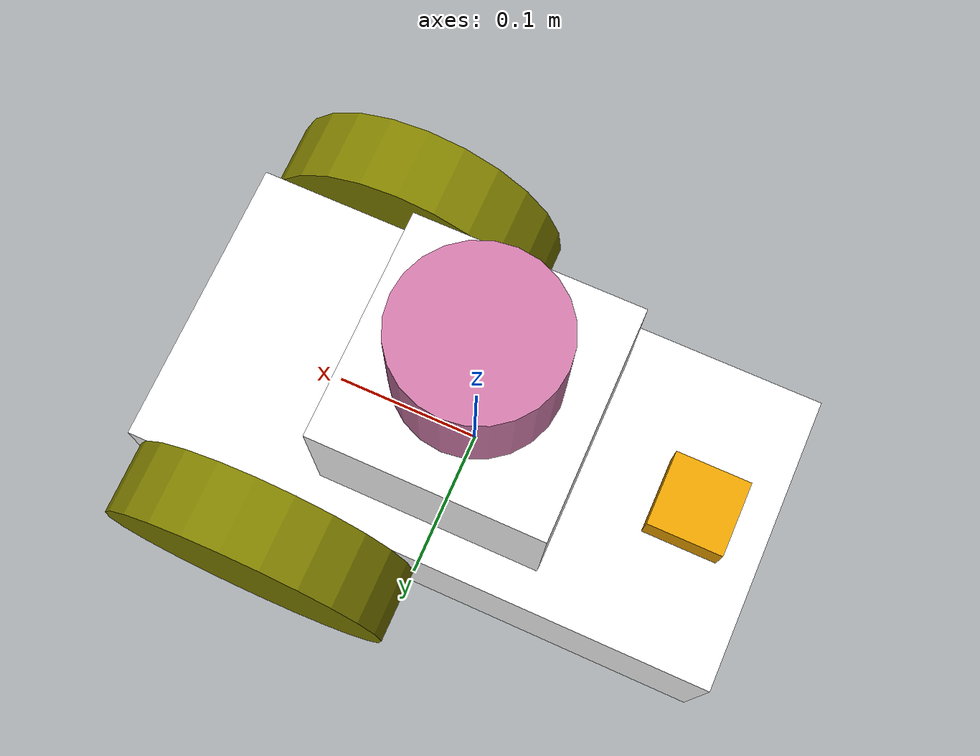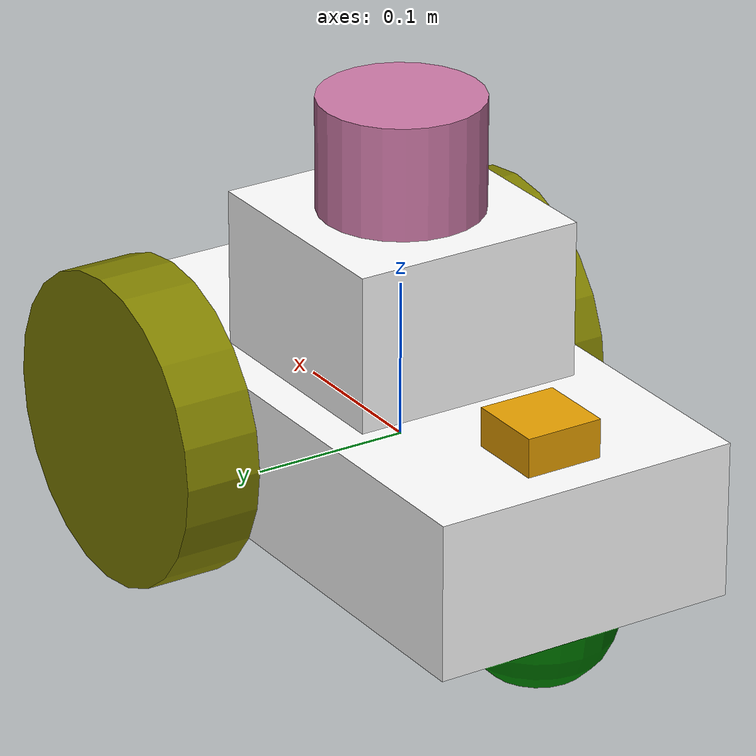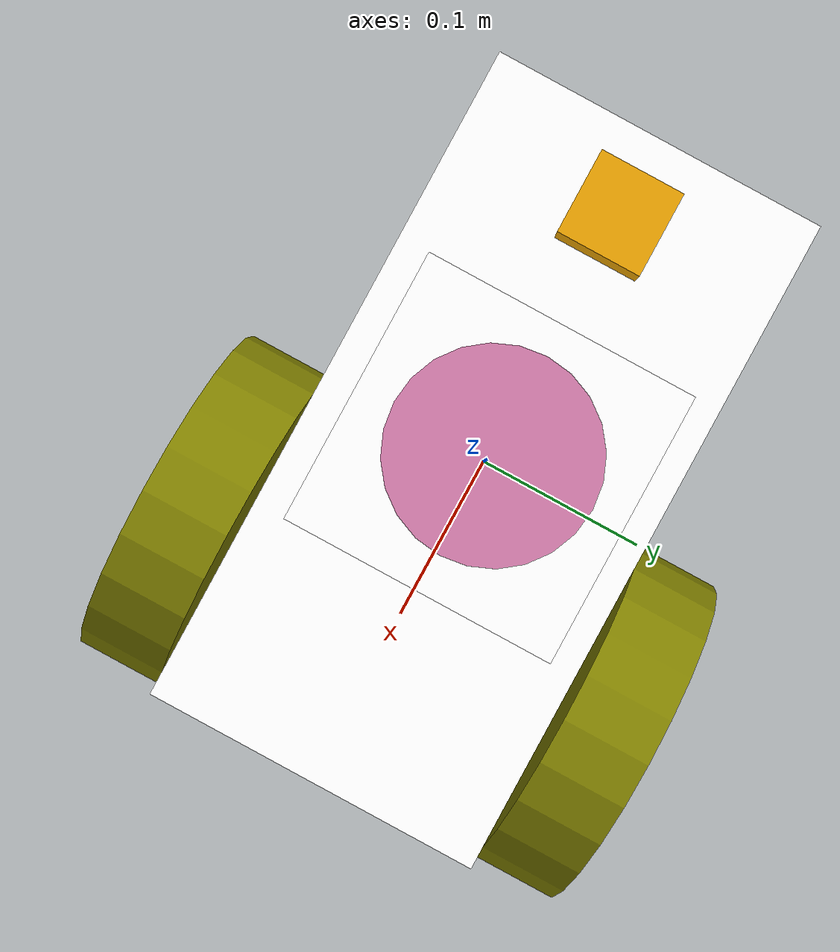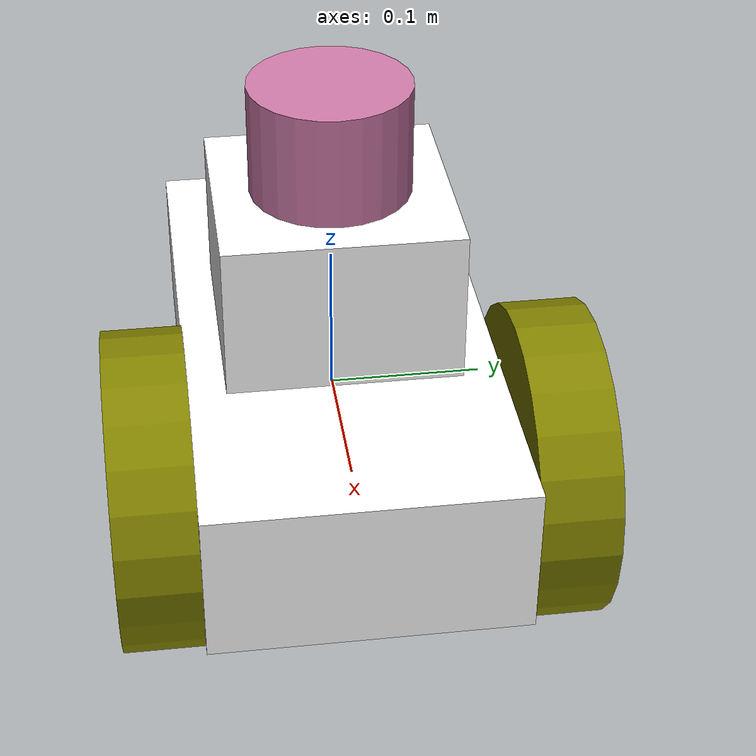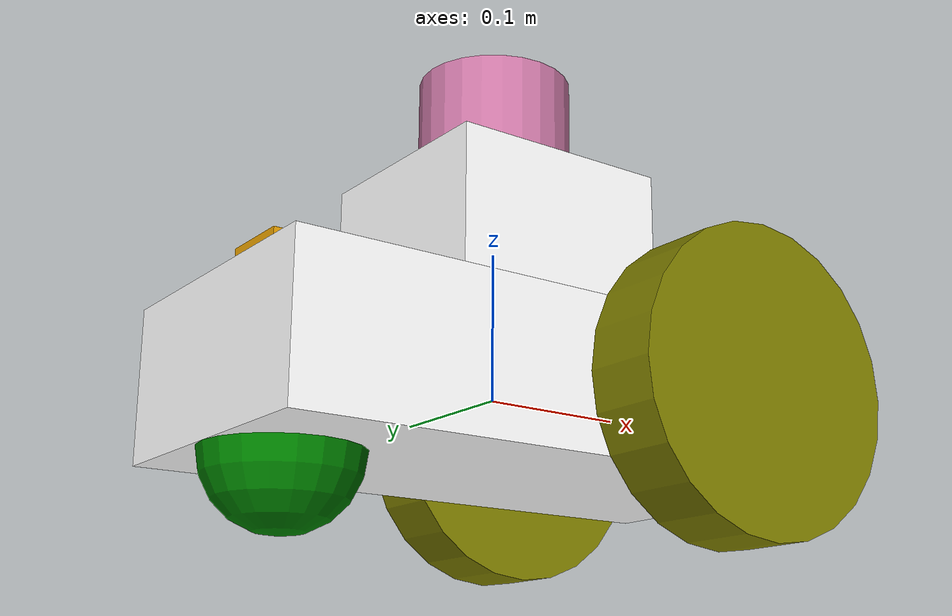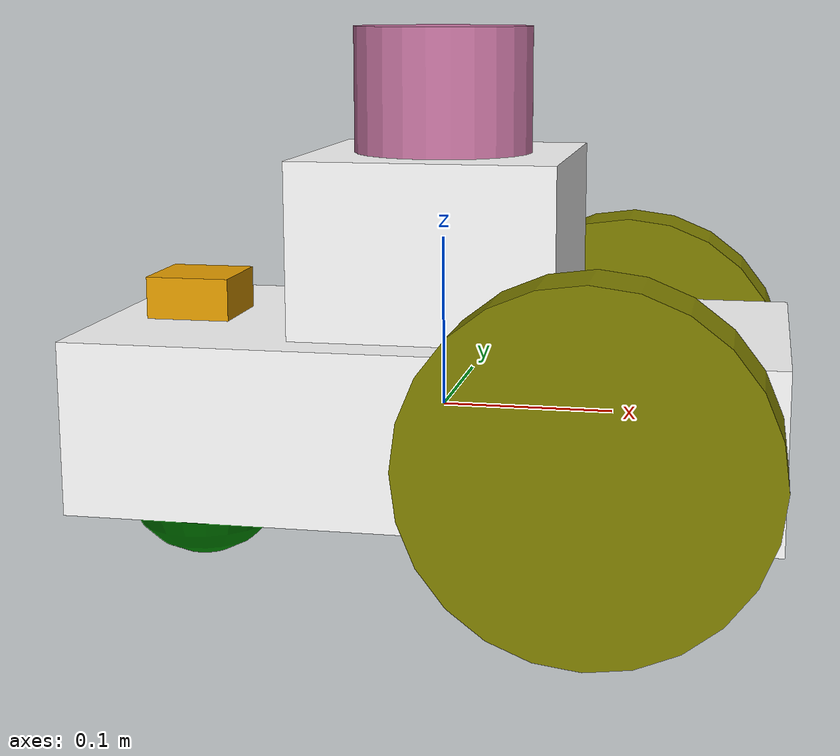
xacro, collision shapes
<?xml version="1.0"?>
<robot name="robot"
    xmlns:xacro="http://ros.org/wiki/xacro">
    <xacro:include filename="$(find lidar_robot_model)/urdf/body/body.urdf.xacro"/>
    <xacro:include filename="$(find lidar_robot_model)/urdf/wheel/wheel.urdf.xacro"/>
    <xacro:include filename="$(find lidar_robot_model)/urdf/caster/caster.urdf.xacro"/>
    <xacro:include filename="$(find lidar_robot_model)/urdf/lidar_base/lidar_base.urdf.xacro"/>
    <xacro:include filename="$(find velodyne_description)/urdf/VLP-16.urdf.xacro"/>
    <xacro:include filename="$(find lidar_robot_model)/urdf/sensors/imu.urdf.xacro"/>
    <link name="base_footprint"/>

    <xacro:base parent="base_footprint">
        <origin xyz="0 0 0"/>
    </xacro:base>

    <xacro:wheel prefix="right" parent="base_link">
        <origin xyz="0.1 -0.125 0.0" rpy="1.57 0 0" />
        <axis xyz="0 0 -1" />
    </xacro:wheel>

    <xacro:wheel prefix="left" parent="base_link">
        <origin xyz="0.1 0.125 0.0" rpy="-1.57 0 0" />
        <axis xyz="0 0 1" />
    </xacro:wheel>

    <xacro:caster parent="base_link">
        <origin xyz="-0.15 0 -0.05"/>
    </xacro:caster>

    <xacro:lidar_base parent="base_link">
        <origin xyz="0 0 0.10"/>
    </xacro:lidar_base>

    <xacro:VLP-16 parent="base_link" name="velodyne" topic="/velodyne_points" organize_cloud="false" hz="10" samples="1875" gpu="false">
        <origin xyz="0 0 0.150" rpy="0 0 0" />
    </xacro:VLP-16>

    <xacro:imu_sensor parent="base_link">
        <origin xyz="-0.15 0 0.05" rpy="0 0 0" />
    </xacro:imu_sensor>

    <!-- ===========  Transmission ============ -->
    <xacro:wheel_trans prefix="right" interface="hardware_interface/VelocityJointInterface" />
    <xacro:wheel_trans prefix="left" interface="hardware_interface/VelocityJointInterface" />

    <!-- =============== Gazebo =============== -->
    <gazebo>
        <plugin name="gazebo_ros_control" filename="libgazebo_ros_control.so">
            <robotNamespace>/robot</robotNamespace>
        </plugin>
    </gazebo>

    <xacro:base_gazebo/>
    <xacro:wheel_gazebo prefix="right" />
    <xacro:wheel_gazebo prefix="left" />
    <xacro:caster_gazebo/>
    <xacro:imu_gazebo/>
</robot>

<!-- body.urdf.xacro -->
<robot xmlns:xacro="http://ros.org/wiki/xacro">
  <xacro:include filename="$(find lidar_robot_model)/urdf/body/body.gazebo.xacro" />
  <xacro:macro name="base" params="parent *joint_origin">
    <joint name="base_joint" type="fixed">
      <xacro:insert_block name="joint_origin"/>
      <parent link="${parent}"/>
      <child link="base_link"/>
    </joint>

    <link name="base_link">
      <visual>
        <geometry>
          <box size="0.400 0.200 0.100"/>
        </geometry>
        <material name="gray">
          <color rgba="1 1 1 1"/>
        </material>
      </visual>

      <collision>
        <geometry>
          <box size="0.400 0.200 0.100"/>
        </geometry>
      </collision>

      <inertial>
        <origin xyz="0 0 0"/>
        <mass value="0.6"/>
        <inertia ixx="1e-3" ixy="0" ixz="0" iyy="1e-3" iyz="0" izz="1e-3"/>
      </inertial>
    </link>
  </xacro:macro>
</robot>

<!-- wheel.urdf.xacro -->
<robot xmlns:xacro="http://ros.org/wiki/xacro">
  <xacro:include filename="$(find lidar_robot_model)/urdf/wheel/wheel.gazebo.xacro" />
  <xacro:include filename="$(find lidar_robot_model)/urdf/wheel/wheel.transmission.xacro" />
  <xacro:macro name="wheel" params="prefix parent *joint_origin *joint_axis">
    <joint name="${prefix}_wheel_joint" type="continuous">
      <xacro:insert_block name="joint_origin" />
      <xacro:insert_block name="joint_axis" />
      <parent link="${parent}" />
      <child link="${prefix}_wheel" />
    </joint>

    <link name="${prefix}_wheel">
      <visual>
        <geometry>
          <cylinder radius="0.1" length="0.05"/>
        </geometry>
        <material name="olive">
          <color rgba="128 128 0 1"/>
        </material>
      </visual>

      <collision>
        <geometry>
          <cylinder radius="0.1" length="0.05"/>
        </geometry>
      </collision>

      <inertial>
        <origin xyz="0.0 0.0 0.0" />
        <mass value="0.500"/>
        <inertia ixx="0.0013541667" ixy="0" ixz="0" iyy="0.0013541667" iyz="0" izz="0.0025"/>
      </inertial>
    </link>
  </xacro:macro>
</robot>

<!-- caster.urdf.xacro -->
<robot xmlns:xacro="http://ros.org/wiki/xacro">
  <xacro:include filename="$(find lidar_robot_model)/urdf/caster/caster.gazebo.xacro" />
  <xacro:macro name="caster" params="parent *joint_origin">
    <joint name="$caster_joint" type="fixed">
      <xacro:insert_block name="joint_origin" />
      <parent link="${parent}" />
      <child link="caster_link" />
    </joint>

    <link name="caster_link">
      <visual>
        <geometry>
          <sphere radius="0.05"/>
        </geometry>
        <material name="green">
          <color rgba="0 128 0 1"/>
        </material>
      </visual>

      <collision>
        <geometry>
          <sphere radius="0.05"/>
        </geometry>
      </collision>

      <inertial>
        <origin xyz="0.0 0 0.0" />
        <mass value="0.50" />
        <inertia ixx="0.0025" ixy="0.0" iyy="0.0025" ixz="0.0" iyz="0.0" izz="0.0025" />
      </inertial>
    </link>
  </xacro:macro>
</robot>

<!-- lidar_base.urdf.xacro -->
<robot xmlns:xacro="http://ros.org/wiki/xacro">
  <xacro:include filename="$(find lidar_robot_model)/urdf/lidar_base/lidar_base.gazebo.xacro" />
  <xacro:macro name="lidar_base" params="parent *joint_origin">
    <joint name="lidar_base_joint" type="fixed">
      <xacro:insert_block name="joint_origin"/>
      <parent link="${parent}"/>
      <child link="lidar_base_link"/>
    </joint>

    <link name="lidar_base_link">
      <visual>
        <geometry>
          <box size="0.150 0.150 0.100"/>
        </geometry>
        <material name="gray">
          <color rgba="1 1 1 1"/>
        </material>
      </visual>

      <collision>
        <geometry>
          <box size="0.150 0.150 0.100"/>
        </geometry>
      </collision>

      <inertial>
        <origin xyz="0 0 0"/>
        <mass value="0.6"/>
        <inertia ixx="1e-3" ixy="0" ixz="0" iyy="1e-3" iyz="0" izz="1e-3"/>
      </inertial>
    </link>
  </xacro:macro>
</robot>

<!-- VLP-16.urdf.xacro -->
<robot xmlns:xacro="http://www.ros.org/wiki/xacro" name="VLP-16">
  <xacro:property name="M_PI" value="3.1415926535897931" />
  <xacro:macro name="VLP-16" params="*origin is_sim:=true parent:=base_link name:=velodyne tf_prefix:='' topic:=/velodyne_points organize_cloud:=false hz:=10 lasers:=16 samples:=1875 collision_range:=0.3 min_range:=0.0 max_range:=100.0 noise:=0.008 min_angle:=-${M_PI} max_angle:=${M_PI} gpu:=false">

    <joint name="${name}_base_mount_joint" type="fixed">
      <xacro:insert_block name="origin" />
      <parent link="${parent}"/>
      <child link="${name}_base_link"/>
    </joint>

    <link name="${name}_base_link">
      <inertial>
        <mass value="0.83"/>
        <origin xyz="0 0 0.03585"/>
        <inertia ixx="${(0.83 * (3.0*0.0516*0.0516 + 0.0717*0.0717)) / 12.0}" ixy="0" ixz="0"
          iyy="${(0.83 * (3.0*0.0516*0.0516 + 0.0717*0.0717)) / 12.0}" iyz="0"
          izz="${0.5 * 0.83 * (0.0516*0.0516)}"/>
      </inertial>
      <visual>
        <geometry>
          <mesh filename="package://velodyne_description/meshes/VLP16_base_1.dae" />
        </geometry>
      </visual>
      <visual>
        <geometry>
          <mesh filename="package://velodyne_description/meshes/VLP16_base_2.dae" />
        </geometry>
      </visual>
      <collision>
        <origin rpy="0 0 0" xyz="0 0 0.03585"/>
        <geometry>
          <cylinder radius="0.0516" length="0.0717"/>
        </geometry>
      </collision>
    </link>

    <joint name="${name}_base_scan_joint" type="fixed" >
      <origin xyz="0 0 0.0377" rpy="0 0 0" />
      <parent link="${name}_base_link" />
      <child link="${name}"/>
    </joint>

    <link name="${name}">
      <inertial>
        <mass value="0.01"/>
        <origin xyz="0 0 0"/>
        <inertia ixx="1e-7" ixy="0" ixz="0" iyy="1e-7" iyz="0" izz="1e-7"/>
      </inertial>
      <visual>
        <origin xyz="0 0 -0.0377" />
        <geometry>
          <mesh filename="package://velodyne_description/meshes/VLP16_scan.dae" />
        </geometry>
      </visual>
      <collision>
        <geometry>
          <sphere radius="0"/>
        </geometry>
      </collision>
    </link>

    <!-- Gazebo requires the velodyne_gazebo_plugins package -->
    <xacro:if value="${is_sim}">
        <gazebo reference="${name}">
            <xacro:if value="${gpu}">
                <sensor type="gpu_ray" name="${name}-VLP16">
                <pose>0 0 0 0 0 0</pose>
                <visualize>false</visualize>
                <update_rate>${hz}</update_rate>
                <ray>
                    <scan>
                    <horizontal>
                        <samples>${samples}</samples>
                        <resolution>1</resolution>
                        <min_angle>${min_angle}</min_angle>
                        <max_angle>${max_angle}</max_angle>
                    </horizontal>
                    <vertical>
                        <samples>${lasers}</samples>
                        <resolution>1</resolution>
                        <min_angle>-${15.0*M_PI/180.0}</min_angle>
                        <max_angle> ${15.0*M_PI/180.0}</max_angle>
                    </vertical>
                    </scan>
                    <range>
                    <min>${collision_range}</min>
                    <max>${max_range+1}</max>
                    <resolution>0.001</resolution>
                    </range>
                    <noise>
                    <type>gaussian</type>
                    <mean>0.0</mean>
                    <stddev>0.0</stddev>
                    </noise>
                </ray>
                <plugin name="gazebo_ros_laser_controller" filename="libgazebo_ros_velodyne_laser.so">
                    <ros>
                    <namespace>/${name}</namespace>
                    <remapping>~/out:=${topic}</remapping>
                    </ros>
                    <tf_prefix>${tf_prefix}</tf_prefix>
                    <frame_name>${name}</frame_name>
                    <organize_cloud>${organize_cloud}</organize_cloud>
                    <min_range>${min_range}</min_range>
                    <max_range>${max_range}</max_range>
                    <gaussian_noise>${noise}</gaussian_noise>
                </plugin>
                </sensor>
            </xacro:if>
            <xacro:unless value="${gpu}">
                <sensor type="ray" name="${name}-VLP16">
                <pose>0 0 0 0 0 0</pose>
                <visualize>false</visualize>
                <update_rate>${hz}</update_rate>
                <ray>
                    <scan>
                    <horizontal>
                        <samples>${samples}</samples>
                        <resolution>1</resolution>
                        <min_angle>${min_angle}</min_angle>
                        <max_angle>${max_angle}</max_angle>
                    </horizontal>
                    <vertical>
                        <samples>${lasers}</samples>
                        <resolution>1</resolution>
                        <min_angle>-${15.0*M_PI/180.0}</min_angle>
                        <max_angle> ${15.0*M_PI/180.0}</max_angle>
                    </vertical>
                    </scan>
                    <range>
                    <min>${collision_range}</min>
                    <max>${max_range+1}</max>
                    <resolution>0.001</resolution>
                    </range>
                    <noise>
                    <type>gaussian</type>
                    <mean>0.0</mean>
                    <stddev>0.0</stddev>
                    </noise>
                </ray>
                <plugin name="gazebo_ros_laser_controller" filename="libgazebo_ros_velodyne_laser.so">
                    <ros>
                    <namespace>/${name}</namespace>
                    <remapping>~/out:=${topic}</remapping>
                    </ros>
                    <tf_prefix>${tf_prefix}</tf_prefix>
                    <frame_name>${name}</frame_name>
                    <organize_cloud>${organize_cloud}</organize_cloud>
                    <min_range>${min_range}</min_range>
                    <max_range>${max_range}</max_range>
                    <gaussian_noise>${noise}</gaussian_noise>
                </plugin>
                </sensor>
            </xacro:unless>
        </gazebo>
    </xacro:if>

  </xacro:macro>
</robot>

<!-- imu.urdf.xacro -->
<robot xmlns:xacro="http://ros.org/wiki/xacro">
  <xacro:include filename="$(find lidar_robot_model)/urdf/sensors/imu.gazebo.xacro" />
  <xacro:macro name="imu_sensor" params="parent *joint_origin">
    <joint name="imu_joint" type="fixed">
      <xacro:insert_block name="joint_origin" />
      <parent link="${parent}" />
      <child link="imu_link" />
    </joint>

    <link name="imu_link">
      <visual>
        <geometry>
          <box size="0.05 0.05 0.05"/>
        </geometry>
      </visual>

      <collision>
      <origin xyz="0 0 0" rpy="0 0 0"/>
        <geometry>
          <box size="0.05 0.05 0.05"/>
        </geometry>
      </collision>

      <inertial>
        <mass value="1e-5" />
        <origin xyz="0 0 0" rpy="0 0 0"/>
        <inertia ixx="1e-6" ixy="0" ixz="0" iyy="1e-6" iyz="0" izz="1e-6" />
      </inertial>
    </link>
  </xacro:macro>
</robot>
